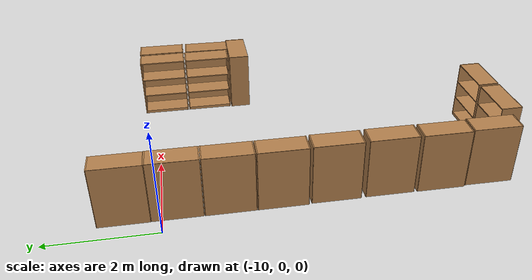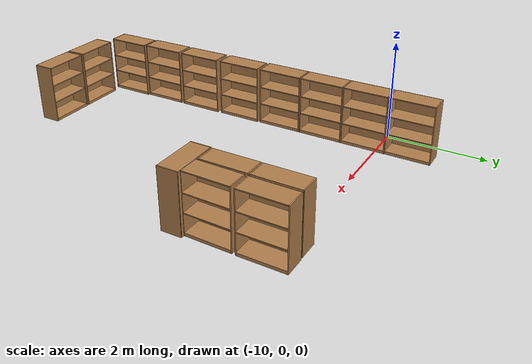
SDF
<sdf version="1.7">
 <world name="default">
  <model name="bookshelf">
   <static>1</static>
   <link name="link">
    <inertial><mass>1</mass></inertial>
    <collision name="back">
     <pose>0 0.005 0.6 0 -0 0</pose>
     <geometry><box><size>0.9 0.01 1.2</size></box></geometry>
    </collision>
    <visual name="visual1">
     <pose>0 0.005 0.6 0 -0 0</pose>
     <geometry><box><size>0.9 0.01 1.2</size></box></geometry>
     <material>
      <script><uri>file://media/materials/scripts/gazebo.material</uri><name>Gazebo/Wood</name></script>
     </material>
    </visual>
    <collision name="left_side">
     <pose>0.45 -0.195 0.6 0 -0 0</pose>
     <geometry><box><size>0.02 0.4 1.2</size></box></geometry>
    </collision>
    <visual name="visual2">
     <pose>0.45 -0.195 0.6 0 -0 0</pose>
     <geometry><box><size>0.02 0.4 1.2</size></box></geometry>
     <material>
      <script><uri>file://media/materials/scripts/gazebo.material</uri><name>Gazebo/Wood</name></script>
     </material>
    </visual>
    <collision name="right_side">
     <pose>-0.45 -0.195 0.6 0 -0 0</pose>
     <geometry><box><size>0.02 0.4 1.2</size></box></geometry>
    </collision>
    <visual name="visual3">
     <pose>-0.45 -0.195 0.6 0 -0 0</pose>
     <geometry><box><size>0.02 0.4 1.2</size></box></geometry>
     <material>
      <script><uri>file://media/materials/scripts/gazebo.material</uri><name>Gazebo/Wood</name></script>
     </material>
    </visual>
    <collision name="bottom">
     <pose>0 -0.195 0.03 0 -0 0</pose>
     <geometry><box><size>0.88 0.4 0.06</size></box></geometry>
    </collision>
    <visual name="visual4">
     <pose>0 -0.195 0.03 0 -0 0</pose>
     <geometry><box><size>0.88 0.4 0.06</size></box></geometry>
     <material>
      <script><uri>file://media/materials/scripts/gazebo.material</uri><name>Gazebo/Wood</name></script>
     </material>
    </visual>
    <collision name="top">
     <pose>0 -0.195 1.19 0 -0 0</pose>
     <geometry><box><size>0.88 0.4 0.02</size></box></geometry>
    </collision>
    <visual name="visual5">
     <pose>0 -0.195 1.19 0 -0 0</pose>
     <geometry><box><size>0.88 0.4 0.02</size></box></geometry>
     <material>
      <script><uri>file://media/materials/scripts/gazebo.material</uri><name>Gazebo/Wood</name></script>
     </material>
    </visual>
    <collision name="low_shelf">
     <pose>0 -0.195 0.43 0 -0 0</pose>
     <geometry><box><size>0.88 0.4 0.02</size></box></geometry>
    </collision>
    <visual name="visual6">
     <pose>0 -0.195 0.43 0 -0 0</pose>
     <geometry><box><size>0.88 0.4 0.02</size></box></geometry>
     <material>
      <script><uri>file://media/materials/scripts/gazebo.material</uri><name>Gazebo/Wood</name></script>
     </material>
    </visual>
    <collision name="high_shelf">
     <pose>0 -0.195 0.8 0 -0 0</pose>
     <geometry><box><size>0.88 0.4 0.02</size></box></geometry>
    </collision>
    <visual name="visual7">
     <pose>0 -0.195 0.8 0 -0 0</pose>
     <geometry><box><size>0.88 0.4 0.02</size></box></geometry>
     <material>
      <script><uri>file://media/materials/scripts/gazebo.material</uri><name>Gazebo/Wood</name></script>
     </material>
    </visual>
   </link>
   <pose>-5.54772 -1.59367 0 0 -0 0</pose>
  </model>
  <model name="bookshelf_clone_0">
   <static>1</static>
   <link name="link">
    <inertial><mass>1</mass></inertial>
    <collision name="back">
     <pose>0 0.005 0.6 0 -0 0</pose>
     <geometry><box><size>0.9 0.01 1.2</size></box></geometry>
    </collision>
    <visual name="visual1">
     <pose>0 0.005 0.6 0 -0 0</pose>
     <geometry><box><size>0.9 0.01 1.2</size></box></geometry>
     <material>
      <script><uri>file://media/materials/scripts/gazebo.material</uri><name>Gazebo/Wood</name></script>
     </material>
    </visual>
    <collision name="left_side">
     <pose>0.45 -0.195 0.6 0 -0 0</pose>
     <geometry><box><size>0.02 0.4 1.2</size></box></geometry>
    </collision>
    <visual name="visual2">
     <pose>0.45 -0.195 0.6 0 -0 0</pose>
     <geometry><box><size>0.02 0.4 1.2</size></box></geometry>
     <material>
      <script><uri>file://media/materials/scripts/gazebo.material</uri><name>Gazebo/Wood</name></script>
     </material>
    </visual>
    <collision name="right_side">
     <pose>-0.45 -0.195 0.6 0 -0 0</pose>
     <geometry><box><size>0.02 0.4 1.2</size></box></geometry>
    </collision>
    <visual name="visual3">
     <pose>-0.45 -0.195 0.6 0 -0 0</pose>
     <geometry><box><size>0.02 0.4 1.2</size></box></geometry>
     <material>
      <script><uri>file://media/materials/scripts/gazebo.material</uri><name>Gazebo/Wood</name></script>
     </material>
    </visual>
    <collision name="bottom">
     <pose>0 -0.195 0.03 0 -0 0</pose>
     <geometry><box><size>0.88 0.4 0.06</size></box></geometry>
    </collision>
    <visual name="visual4">
     <pose>0 -0.195 0.03 0 -0 0</pose>
     <geometry><box><size>0.88 0.4 0.06</size></box></geometry>
     <material>
      <script><uri>file://media/materials/scripts/gazebo.material</uri><name>Gazebo/Wood</name></script>
     </material>
    </visual>
    <collision name="top">
     <pose>0 -0.195 1.19 0 -0 0</pose>
     <geometry><box><size>0.88 0.4 0.02</size></box></geometry>
    </collision>
    <visual name="visual5">
     <pose>0 -0.195 1.19 0 -0 0</pose>
     <geometry><box><size>0.88 0.4 0.02</size></box></geometry>
     <material>
      <script><uri>file://media/materials/scripts/gazebo.material</uri><name>Gazebo/Wood</name></script>
     </material>
    </visual>
    <collision name="low_shelf">
     <pose>0 -0.195 0.43 0 -0 0</pose>
     <geometry><box><size>0.88 0.4 0.02</size></box></geometry>
    </collision>
    <visual name="visual6">
     <pose>0 -0.195 0.43 0 -0 0</pose>
     <geometry><box><size>0.88 0.4 0.02</size></box></geometry>
     <material>
      <script><uri>file://media/materials/scripts/gazebo.material</uri><name>Gazebo/Wood</name></script>
     </material>
    </visual>
    <collision name="high_shelf">
     <pose>0 -0.195 0.8 0 -0 0</pose>
     <geometry><box><size>0.88 0.4 0.02</size></box></geometry>
    </collision>
    <visual name="visual7">
     <pose>0 -0.195 0.8 0 -0 0</pose>
     <geometry><box><size>0.88 0.4 0.02</size></box></geometry>
     <material>
      <script><uri>file://media/materials/scripts/gazebo.material</uri><name>Gazebo/Wood</name></script>
     </material>
    </visual>
   </link>
   <pose>-9.67669 0.644456 0 0 -0 1.56663</pose>
  </model>
  <model name="bookshelf_clone_0_clone">
   <static>1</static>
   <link name="link">
    <inertial><mass>1</mass></inertial>
    <collision name="back">
     <pose>0 0.005 0.6 0 -0 0</pose>
     <geometry><box><size>0.9 0.01 1.2</size></box></geometry>
    </collision>
    <visual name="visual1">
     <pose>0 0.005 0.6 0 -0 0</pose>
     <geometry><box><size>0.9 0.01 1.2</size></box></geometry>
     <material>
      <script><uri>file://media/materials/scripts/gazebo.material</uri><name>Gazebo/Wood</name></script>
     </material>
    </visual>
    <collision name="left_side">
     <pose>0.45 -0.195 0.6 0 -0 0</pose>
     <geometry><box><size>0.02 0.4 1.2</size></box></geometry>
    </collision>
    <visual name="visual2">
     <pose>0.45 -0.195 0.6 0 -0 0</pose>
     <geometry><box><size>0.02 0.4 1.2</size></box></geometry>
     <material>
      <script><uri>file://media/materials/scripts/gazebo.material</uri><name>Gazebo/Wood</name></script>
     </material>
    </visual>
    <collision name="right_side">
     <pose>-0.45 -0.195 0.6 0 -0 0</pose>
     <geometry><box><size>0.02 0.4 1.2</size></box></geometry>
    </collision>
    <visual name="visual3">
     <pose>-0.45 -0.195 0.6 0 -0 0</pose>
     <geometry><box><size>0.02 0.4 1.2</size></box></geometry>
     <material>
      <script><uri>file://media/materials/scripts/gazebo.material</uri><name>Gazebo/Wood</name></script>
     </material>
    </visual>
    <collision name="bottom">
     <pose>0 -0.195 0.03 0 -0 0</pose>
     <geometry><box><size>0.88 0.4 0.06</size></box></geometry>
    </collision>
    <visual name="visual4">
     <pose>0 -0.195 0.03 0 -0 0</pose>
     <geometry><box><size>0.88 0.4 0.06</size></box></geometry>
     <material>
      <script><uri>file://media/materials/scripts/gazebo.material</uri><name>Gazebo/Wood</name></script>
     </material>
    </visual>
    <collision name="top">
     <pose>0 -0.195 1.19 0 -0 0</pose>
     <geometry><box><size>0.88 0.4 0.02</size></box></geometry>
    </collision>
    <visual name="visual5">
     <pose>0 -0.195 1.19 0 -0 0</pose>
     <geometry><box><size>0.88 0.4 0.02</size></box></geometry>
     <material>
      <script><uri>file://media/materials/scripts/gazebo.material</uri><name>Gazebo/Wood</name></script>
     </material>
    </visual>
    <collision name="low_shelf">
     <pose>0 -0.195 0.43 0 -0 0</pose>
     <geometry><box><size>0.88 0.4 0.02</size></box></geometry>
    </collision>
    <visual name="visual6">
     <pose>0 -0.195 0.43 0 -0 0</pose>
     <geometry><box><size>0.88 0.4 0.02</size></box></geometry>
     <material>
      <script><uri>file://media/materials/scripts/gazebo.material</uri><name>Gazebo/Wood</name></script>
     </material>
    </visual>
    <collision name="high_shelf">
     <pose>0 -0.195 0.8 0 -0 0</pose>
     <geometry><box><size>0.88 0.4 0.02</size></box></geometry>
    </collision>
    <visual name="visual7">
     <pose>0 -0.195 0.8 0 -0 0</pose>
     <geometry><box><size>0.88 0.4 0.02</size></box></geometry>
     <material>
      <script><uri>file://media/materials/scripts/gazebo.material</uri><name>Gazebo/Wood</name></script>
     </material>
    </visual>
   </link>
   <pose>-9.67578 -0.269706 0 0 -0 1.56663</pose>
  </model>
  <model name="bookshelf_clone_0_clone_0">
   <static>1</static>
   <link name="link">
    <inertial><mass>1</mass></inertial>
    <collision name="back">
     <pose>0 0.005 0.6 0 -0 0</pose>
     <geometry><box><size>0.9 0.01 1.2</size></box></geometry>
    </collision>
    <visual name="visual1">
     <pose>0 0.005 0.6 0 -0 0</pose>
     <geometry><box><size>0.9 0.01 1.2</size></box></geometry>
     <material>
      <script><uri>file://media/materials/scripts/gazebo.material</uri><name>Gazebo/Wood</name></script>
     </material>
    </visual>
    <collision name="left_side">
     <pose>0.45 -0.195 0.6 0 -0 0</pose>
     <geometry><box><size>0.02 0.4 1.2</size></box></geometry>
    </collision>
    <visual name="visual2">
     <pose>0.45 -0.195 0.6 0 -0 0</pose>
     <geometry><box><size>0.02 0.4 1.2</size></box></geometry>
     <material>
      <script><uri>file://media/materials/scripts/gazebo.material</uri><name>Gazebo/Wood</name></script>
     </material>
    </visual>
    <collision name="right_side">
     <pose>-0.45 -0.195 0.6 0 -0 0</pose>
     <geometry><box><size>0.02 0.4 1.2</size></box></geometry>
    </collision>
    <visual name="visual3">
     <pose>-0.45 -0.195 0.6 0 -0 0</pose>
     <geometry><box><size>0.02 0.4 1.2</size></box></geometry>
     <material>
      <script><uri>file://media/materials/scripts/gazebo.material</uri><name>Gazebo/Wood</name></script>
     </material>
    </visual>
    <collision name="bottom">
     <pose>0 -0.195 0.03 0 -0 0</pose>
     <geometry><box><size>0.88 0.4 0.06</size></box></geometry>
    </collision>
    <visual name="visual4">
     <pose>0 -0.195 0.03 0 -0 0</pose>
     <geometry><box><size>0.88 0.4 0.06</size></box></geometry>
     <material>
      <script><uri>file://media/materials/scripts/gazebo.material</uri><name>Gazebo/Wood</name></script>
     </material>
    </visual>
    <collision name="top">
     <pose>0 -0.195 1.19 0 -0 0</pose>
     <geometry><box><size>0.88 0.4 0.02</size></box></geometry>
    </collision>
    <visual name="visual5">
     <pose>0 -0.195 1.19 0 -0 0</pose>
     <geometry><box><size>0.88 0.4 0.02</size></box></geometry>
     <material>
      <script><uri>file://media/materials/scripts/gazebo.material</uri><name>Gazebo/Wood</name></script>
     </material>
    </visual>
    <collision name="low_shelf">
     <pose>0 -0.195 0.43 0 -0 0</pose>
     <geometry><box><size>0.88 0.4 0.02</size></box></geometry>
    </collision>
    <visual name="visual6">
     <pose>0 -0.195 0.43 0 -0 0</pose>
     <geometry><box><size>0.88 0.4 0.02</size></box></geometry>
     <material>
      <script><uri>file://media/materials/scripts/gazebo.material</uri><name>Gazebo/Wood</name></script>
     </material>
    </visual>
    <collision name="high_shelf">
     <pose>0 -0.195 0.8 0 -0 0</pose>
     <geometry><box><size>0.88 0.4 0.02</size></box></geometry>
    </collision>
    <visual name="visual7">
     <pose>0 -0.195 0.8 0 -0 0</pose>
     <geometry><box><size>0.88 0.4 0.02</size></box></geometry>
     <material>
      <script><uri>file://media/materials/scripts/gazebo.material</uri><name>Gazebo/Wood</name></script>
     </material>
    </visual>
   </link>
   <pose>-9.68117 -1.19587 0 0 -0 1.56663</pose>
  </model>
  <model name="bookshelf_clone_0_clone_0_clone">
   <static>1</static>
   <link name="link">
    <inertial><mass>1</mass></inertial>
    <collision name="back">
     <pose>0 0.005 0.6 0 -0 0</pose>
     <geometry><box><size>0.9 0.01 1.2</size></box></geometry>
    </collision>
    <visual name="visual1">
     <pose>0 0.005 0.6 0 -0 0</pose>
     <geometry><box><size>0.9 0.01 1.2</size></box></geometry>
     <material>
      <script><uri>file://media/materials/scripts/gazebo.material</uri><name>Gazebo/Wood</name></script>
     </material>
    </visual>
    <collision name="left_side">
     <pose>0.45 -0.195 0.6 0 -0 0</pose>
     <geometry><box><size>0.02 0.4 1.2</size></box></geometry>
    </collision>
    <visual name="visual2">
     <pose>0.45 -0.195 0.6 0 -0 0</pose>
     <geometry><box><size>0.02 0.4 1.2</size></box></geometry>
     <material>
      <script><uri>file://media/materials/scripts/gazebo.material</uri><name>Gazebo/Wood</name></script>
     </material>
    </visual>
    <collision name="right_side">
     <pose>-0.45 -0.195 0.6 0 -0 0</pose>
     <geometry><box><size>0.02 0.4 1.2</size></box></geometry>
    </collision>
    <visual name="visual3">
     <pose>-0.45 -0.195 0.6 0 -0 0</pose>
     <geometry><box><size>0.02 0.4 1.2</size></box></geometry>
     <material>
      <script><uri>file://media/materials/scripts/gazebo.material</uri><name>Gazebo/Wood</name></script>
     </material>
    </visual>
    <collision name="bottom">
     <pose>0 -0.195 0.03 0 -0 0</pose>
     <geometry><box><size>0.88 0.4 0.06</size></box></geometry>
    </collision>
    <visual name="visual4">
     <pose>0 -0.195 0.03 0 -0 0</pose>
     <geometry><box><size>0.88 0.4 0.06</size></box></geometry>
     <material>
      <script><uri>file://media/materials/scripts/gazebo.material</uri><name>Gazebo/Wood</name></script>
     </material>
    </visual>
    <collision name="top">
     <pose>0 -0.195 1.19 0 -0 0</pose>
     <geometry><box><size>0.88 0.4 0.02</size></box></geometry>
    </collision>
    <visual name="visual5">
     <pose>0 -0.195 1.19 0 -0 0</pose>
     <geometry><box><size>0.88 0.4 0.02</size></box></geometry>
     <material>
      <script><uri>file://media/materials/scripts/gazebo.material</uri><name>Gazebo/Wood</name></script>
     </material>
    </visual>
    <collision name="low_shelf">
     <pose>0 -0.195 0.43 0 -0 0</pose>
     <geometry><box><size>0.88 0.4 0.02</size></box></geometry>
    </collision>
    <visual name="visual6">
     <pose>0 -0.195 0.43 0 -0 0</pose>
     <geometry><box><size>0.88 0.4 0.02</size></box></geometry>
     <material>
      <script><uri>file://media/materials/scripts/gazebo.material</uri><name>Gazebo/Wood</name></script>
     </material>
    </visual>
    <collision name="high_shelf">
     <pose>0 -0.195 0.8 0 -0 0</pose>
     <geometry><box><size>0.88 0.4 0.02</size></box></geometry>
    </collision>
    <visual name="visual7">
     <pose>0 -0.195 0.8 0 -0 0</pose>
     <geometry><box><size>0.88 0.4 0.02</size></box></geometry>
     <material>
      <script><uri>file://media/materials/scripts/gazebo.material</uri><name>Gazebo/Wood</name></script>
     </material>
    </visual>
   </link>
   <pose>-9.68531 -2.12853 0 0 -0 1.56663</pose>
  </model>
  <model name="bookshelf_clone_0_clone_0_clone_clone">
   <static>1</static>
   <link name="link">
    <inertial><mass>1</mass></inertial>
    <collision name="back">
     <pose>0 0.005 0.6 0 -0 0</pose>
     <geometry><box><size>0.9 0.01 1.2</size></box></geometry>
    </collision>
    <visual name="visual1">
     <pose>0 0.005 0.6 0 -0 0</pose>
     <geometry><box><size>0.9 0.01 1.2</size></box></geometry>
     <material>
      <script><uri>file://media/materials/scripts/gazebo.material</uri><name>Gazebo/Wood</name></script>
     </material>
    </visual>
    <collision name="left_side">
     <pose>0.45 -0.195 0.6 0 -0 0</pose>
     <geometry><box><size>0.02 0.4 1.2</size></box></geometry>
    </collision>
    <visual name="visual2">
     <pose>0.45 -0.195 0.6 0 -0 0</pose>
     <geometry><box><size>0.02 0.4 1.2</size></box></geometry>
     <material>
      <script><uri>file://media/materials/scripts/gazebo.material</uri><name>Gazebo/Wood</name></script>
     </material>
    </visual>
    <collision name="right_side">
     <pose>-0.45 -0.195 0.6 0 -0 0</pose>
     <geometry><box><size>0.02 0.4 1.2</size></box></geometry>
    </collision>
    <visual name="visual3">
     <pose>-0.45 -0.195 0.6 0 -0 0</pose>
     <geometry><box><size>0.02 0.4 1.2</size></box></geometry>
     <material>
      <script><uri>file://media/materials/scripts/gazebo.material</uri><name>Gazebo/Wood</name></script>
     </material>
    </visual>
    <collision name="bottom">
     <pose>0 -0.195 0.03 0 -0 0</pose>
     <geometry><box><size>0.88 0.4 0.06</size></box></geometry>
    </collision>
    <visual name="visual4">
     <pose>0 -0.195 0.03 0 -0 0</pose>
     <geometry><box><size>0.88 0.4 0.06</size></box></geometry>
     <material>
      <script><uri>file://media/materials/scripts/gazebo.material</uri><name>Gazebo/Wood</name></script>
     </material>
    </visual>
    <collision name="top">
     <pose>0 -0.195 1.19 0 -0 0</pose>
     <geometry><box><size>0.88 0.4 0.02</size></box></geometry>
    </collision>
    <visual name="visual5">
     <pose>0 -0.195 1.19 0 -0 0</pose>
     <geometry><box><size>0.88 0.4 0.02</size></box></geometry>
     <material>
      <script><uri>file://media/materials/scripts/gazebo.material</uri><name>Gazebo/Wood</name></script>
     </material>
    </visual>
    <collision name="low_shelf">
     <pose>0 -0.195 0.43 0 -0 0</pose>
     <geometry><box><size>0.88 0.4 0.02</size></box></geometry>
    </collision>
    <visual name="visual6">
     <pose>0 -0.195 0.43 0 -0 0</pose>
     <geometry><box><size>0.88 0.4 0.02</size></box></geometry>
     <material>
      <script><uri>file://media/materials/scripts/gazebo.material</uri><name>Gazebo/Wood</name></script>
     </material>
    </visual>
    <collision name="high_shelf">
     <pose>0 -0.195 0.8 0 -0 0</pose>
     <geometry><box><size>0.88 0.4 0.02</size></box></geometry>
    </collision>
    <visual name="visual7">
     <pose>0 -0.195 0.8 0 -0 0</pose>
     <geometry><box><size>0.88 0.4 0.02</size></box></geometry>
     <material>
      <script><uri>file://media/materials/scripts/gazebo.material</uri><name>Gazebo/Wood</name></script>
     </material>
    </visual>
   </link>
   <pose>-9.67154 -3.09417 0 0 -0 1.56663</pose>
  </model>
  <model name="bookshelf_clone_0_clone_0_clone_clone_0">
   <static>1</static>
   <link name="link">
    <inertial><mass>1</mass></inertial>
    <collision name="back">
     <pose>0 0.005 0.6 0 -0 0</pose>
     <geometry><box><size>0.9 0.01 1.2</size></box></geometry>
    </collision>
    <visual name="visual1">
     <pose>0 0.005 0.6 0 -0 0</pose>
     <geometry><box><size>0.9 0.01 1.2</size></box></geometry>
     <material>
      <script><uri>file://media/materials/scripts/gazebo.material</uri><name>Gazebo/Wood</name></script>
     </material>
    </visual>
    <collision name="left_side">
     <pose>0.45 -0.195 0.6 0 -0 0</pose>
     <geometry><box><size>0.02 0.4 1.2</size></box></geometry>
    </collision>
    <visual name="visual2">
     <pose>0.45 -0.195 0.6 0 -0 0</pose>
     <geometry><box><size>0.02 0.4 1.2</size></box></geometry>
     <material>
      <script><uri>file://media/materials/scripts/gazebo.material</uri><name>Gazebo/Wood</name></script>
     </material>
    </visual>
    <collision name="right_side">
     <pose>-0.45 -0.195 0.6 0 -0 0</pose>
     <geometry><box><size>0.02 0.4 1.2</size></box></geometry>
    </collision>
    <visual name="visual3">
     <pose>-0.45 -0.195 0.6 0 -0 0</pose>
     <geometry><box><size>0.02 0.4 1.2</size></box></geometry>
     <material>
      <script><uri>file://media/materials/scripts/gazebo.material</uri><name>Gazebo/Wood</name></script>
     </material>
    </visual>
    <collision name="bottom">
     <pose>0 -0.195 0.03 0 -0 0</pose>
     <geometry><box><size>0.88 0.4 0.06</size></box></geometry>
    </collision>
    <visual name="visual4">
     <pose>0 -0.195 0.03 0 -0 0</pose>
     <geometry><box><size>0.88 0.4 0.06</size></box></geometry>
     <material>
      <script><uri>file://media/materials/scripts/gazebo.material</uri><name>Gazebo/Wood</name></script>
     </material>
    </visual>
    <collision name="top">
     <pose>0 -0.195 1.19 0 -0 0</pose>
     <geometry><box><size>0.88 0.4 0.02</size></box></geometry>
    </collision>
    <visual name="visual5">
     <pose>0 -0.195 1.19 0 -0 0</pose>
     <geometry><box><size>0.88 0.4 0.02</size></box></geometry>
     <material>
      <script><uri>file://media/materials/scripts/gazebo.material</uri><name>Gazebo/Wood</name></script>
     </material>
    </visual>
    <collision name="low_shelf">
     <pose>0 -0.195 0.43 0 -0 0</pose>
     <geometry><box><size>0.88 0.4 0.02</size></box></geometry>
    </collision>
    <visual name="visual6">
     <pose>0 -0.195 0.43 0 -0 0</pose>
     <geometry><box><size>0.88 0.4 0.02</size></box></geometry>
     <material>
      <script><uri>file://media/materials/scripts/gazebo.material</uri><name>Gazebo/Wood</name></script>
     </material>
    </visual>
    <collision name="high_shelf">
     <pose>0 -0.195 0.8 0 -0 0</pose>
     <geometry><box><size>0.88 0.4 0.02</size></box></geometry>
    </collision>
    <visual name="visual7">
     <pose>0 -0.195 0.8 0 -0 0</pose>
     <geometry><box><size>0.88 0.4 0.02</size></box></geometry>
     <material>
      <script><uri>file://media/materials/scripts/gazebo.material</uri><name>Gazebo/Wood</name></script>
     </material>
    </visual>
   </link>
   <pose>-9.66259 -4.09234 0 0 -0 1.56663</pose>
  </model>
  <model name="bookshelf_clone_0_clone_0_clone_clone_1">
   <static>1</static>
   <link name="link">
    <inertial><mass>1</mass></inertial>
    <collision name="back">
     <pose>0 0.005 0.6 0 -0 0</pose>
     <geometry><box><size>0.9 0.01 1.2</size></box></geometry>
    </collision>
    <visual name="visual1">
     <pose>0 0.005 0.6 0 -0 0</pose>
     <geometry><box><size>0.9 0.01 1.2</size></box></geometry>
     <material>
      <script><uri>file://media/materials/scripts/gazebo.material</uri><name>Gazebo/Wood</name></script>
     </material>
    </visual>
    <collision name="left_side">
     <pose>0.45 -0.195 0.6 0 -0 0</pose>
     <geometry><box><size>0.02 0.4 1.2</size></box></geometry>
    </collision>
    <visual name="visual2">
     <pose>0.45 -0.195 0.6 0 -0 0</pose>
     <geometry><box><size>0.02 0.4 1.2</size></box></geometry>
     <material>
      <script><uri>file://media/materials/scripts/gazebo.material</uri><name>Gazebo/Wood</name></script>
     </material>
    </visual>
    <collision name="right_side">
     <pose>-0.45 -0.195 0.6 0 -0 0</pose>
     <geometry><box><size>0.02 0.4 1.2</size></box></geometry>
    </collision>
    <visual name="visual3">
     <pose>-0.45 -0.195 0.6 0 -0 0</pose>
     <geometry><box><size>0.02 0.4 1.2</size></box></geometry>
     <material>
      <script><uri>file://media/materials/scripts/gazebo.material</uri><name>Gazebo/Wood</name></script>
     </material>
    </visual>
    <collision name="bottom">
     <pose>0 -0.195 0.03 0 -0 0</pose>
     <geometry><box><size>0.88 0.4 0.06</size></box></geometry>
    </collision>
    <visual name="visual4">
     <pose>0 -0.195 0.03 0 -0 0</pose>
     <geometry><box><size>0.88 0.4 0.06</size></box></geometry>
     <material>
      <script><uri>file://media/materials/scripts/gazebo.material</uri><name>Gazebo/Wood</name></script>
     </material>
    </visual>
    <collision name="top">
     <pose>0 -0.195 1.19 0 -0 0</pose>
     <geometry><box><size>0.88 0.4 0.02</size></box></geometry>
    </collision>
    <visual name="visual5">
     <pose>0 -0.195 1.19 0 -0 0</pose>
     <geometry><box><size>0.88 0.4 0.02</size></box></geometry>
     <material>
      <script><uri>file://media/materials/scripts/gazebo.material</uri><name>Gazebo/Wood</name></script>
     </material>
    </visual>
    <collision name="low_shelf">
     <pose>0 -0.195 0.43 0 -0 0</pose>
     <geometry><box><size>0.88 0.4 0.02</size></box></geometry>
    </collision>
    <visual name="visual6">
     <pose>0 -0.195 0.43 0 -0 0</pose>
     <geometry><box><size>0.88 0.4 0.02</size></box></geometry>
     <material>
      <script><uri>file://media/materials/scripts/gazebo.material</uri><name>Gazebo/Wood</name></script>
     </material>
    </visual>
    <collision name="high_shelf">
     <pose>0 -0.195 0.8 0 -0 0</pose>
     <geometry><box><size>0.88 0.4 0.02</size></box></geometry>
    </collision>
    <visual name="visual7">
     <pose>0 -0.195 0.8 0 -0 0</pose>
     <geometry><box><size>0.88 0.4 0.02</size></box></geometry>
     <material>
      <script><uri>file://media/materials/scripts/gazebo.material</uri><name>Gazebo/Wood</name></script>
     </material>
    </visual>
   </link>
   <pose>-9.67127 -5.06479 0 0 -0 1.56663</pose>
  </model>
  <model name="bookshelf_clone_0_clone_0_clone_clone_2">
   <static>1</static>
   <link name="link">
    <inertial><mass>1</mass></inertial>
    <collision name="back">
     <pose>0 0.005 0.6 0 -0 0</pose>
     <geometry><box><size>0.9 0.01 1.2</size></box></geometry>
    </collision>
    <visual name="visual1">
     <pose>0 0.005 0.6 0 -0 0</pose>
     <geometry><box><size>0.9 0.01 1.2</size></box></geometry>
     <material>
      <script><uri>file://media/materials/scripts/gazebo.material</uri><name>Gazebo/Wood</name></script>
     </material>
    </visual>
    <collision name="left_side">
     <pose>0.45 -0.195 0.6 0 -0 0</pose>
     <geometry><box><size>0.02 0.4 1.2</size></box></geometry>
    </collision>
    <visual name="visual2">
     <pose>0.45 -0.195 0.6 0 -0 0</pose>
     <geometry><box><size>0.02 0.4 1.2</size></box></geometry>
     <material>
      <script><uri>file://media/materials/scripts/gazebo.material</uri><name>Gazebo/Wood</name></script>
     </material>
    </visual>
    <collision name="right_side">
     <pose>-0.45 -0.195 0.6 0 -0 0</pose>
     <geometry><box><size>0.02 0.4 1.2</size></box></geometry>
    </collision>
    <visual name="visual3">
     <pose>-0.45 -0.195 0.6 0 -0 0</pose>
     <geometry><box><size>0.02 0.4 1.2</size></box></geometry>
     <material>
      <script><uri>file://media/materials/scripts/gazebo.material</uri><name>Gazebo/Wood</name></script>
     </material>
    </visual>
    <collision name="bottom">
     <pose>0 -0.195 0.03 0 -0 0</pose>
     <geometry><box><size>0.88 0.4 0.06</size></box></geometry>
    </collision>
    <visual name="visual4">
     <pose>0 -0.195 0.03 0 -0 0</pose>
     <geometry><box><size>0.88 0.4 0.06</size></box></geometry>
     <material>
      <script><uri>file://media/materials/scripts/gazebo.material</uri><name>Gazebo/Wood</name></script>
     </material>
    </visual>
    <collision name="top">
     <pose>0 -0.195 1.19 0 -0 0</pose>
     <geometry><box><size>0.88 0.4 0.02</size></box></geometry>
    </collision>
    <visual name="visual5">
     <pose>0 -0.195 1.19 0 -0 0</pose>
     <geometry><box><size>0.88 0.4 0.02</size></box></geometry>
     <material>
      <script><uri>file://media/materials/scripts/gazebo.material</uri><name>Gazebo/Wood</name></script>
     </material>
    </visual>
    <collision name="low_shelf">
     <pose>0 -0.195 0.43 0 -0 0</pose>
     <geometry><box><size>0.88 0.4 0.02</size></box></geometry>
    </collision>
    <visual name="visual6">
     <pose>0 -0.195 0.43 0 -0 0</pose>
     <geometry><box><size>0.88 0.4 0.02</size></box></geometry>
     <material>
      <script><uri>file://media/materials/scripts/gazebo.material</uri><name>Gazebo/Wood</name></script>
     </material>
    </visual>
    <collision name="high_shelf">
     <pose>0 -0.195 0.8 0 -0 0</pose>
     <geometry><box><size>0.88 0.4 0.02</size></box></geometry>
    </collision>
    <visual name="visual7">
     <pose>0 -0.195 0.8 0 -0 0</pose>
     <geometry><box><size>0.88 0.4 0.02</size></box></geometry>
     <material>
      <script><uri>file://media/materials/scripts/gazebo.material</uri><name>Gazebo/Wood</name></script>
     </material>
    </visual>
   </link>
   <pose>-9.64416 -6.00315 0 0 -0 1.56663</pose>
  </model>
  <model name="bookshelf_clone_1">
   <static>1</static>
   <link name="link">
    <inertial><mass>1</mass></inertial>
    <collision name="back">
     <pose>0 0.005 0.6 0 -0 0</pose>
     <geometry><box><size>0.9 0.01 1.2</size></box></geometry>
    </collision>
    <visual name="visual1">
     <pose>0 0.005 0.6 0 -0 0</pose>
     <geometry><box><size>0.9 0.01 1.2</size></box></geometry>
     <material>
      <script><uri>file://media/materials/scripts/gazebo.material</uri><name>Gazebo/Wood</name></script>
     </material>
    </visual>
    <collision name="left_side">
     <pose>0.45 -0.195 0.6 0 -0 0</pose>
     <geometry><box><size>0.02 0.4 1.2</size></box></geometry>
    </collision>
    <visual name="visual2">
     <pose>0.45 -0.195 0.6 0 -0 0</pose>
     <geometry><box><size>0.02 0.4 1.2</size></box></geometry>
     <material>
      <script><uri>file://media/materials/scripts/gazebo.material</uri><name>Gazebo/Wood</name></script>
     </material>
    </visual>
    <collision name="right_side">
     <pose>-0.45 -0.195 0.6 0 -0 0</pose>
     <geometry><box><size>0.02 0.4 1.2</size></box></geometry>
    </collision>
    <visual name="visual3">
     <pose>-0.45 -0.195 0.6 0 -0 0</pose>
     <geometry><box><size>0.02 0.4 1.2</size></box></geometry>
     <material>
      <script><uri>file://media/materials/scripts/gazebo.material</uri><name>Gazebo/Wood</name></script>
     </material>
    </visual>
    <collision name="bottom">
     <pose>0 -0.195 0.03 0 -0 0</pose>
     <geometry><box><size>0.88 0.4 0.06</size></box></geometry>
    </collision>
    <visual name="visual4">
     <pose>0 -0.195 0.03 0 -0 0</pose>
     <geometry><box><size>0.88 0.4 0.06</size></box></geometry>
     <material>
      <script><uri>file://media/materials/scripts/gazebo.material</uri><name>Gazebo/Wood</name></script>
     </material>
    </visual>
    <collision name="top">
     <pose>0 -0.195 1.19 0 -0 0</pose>
     <geometry><box><size>0.88 0.4 0.02</size></box></geometry>
    </collision>
    <visual name="visual5">
     <pose>0 -0.195 1.19 0 -0 0</pose>
     <geometry><box><size>0.88 0.4 0.02</size></box></geometry>
     <material>
      <script><uri>file://media/materials/scripts/gazebo.material</uri><name>Gazebo/Wood</name></script>
     </material>
    </visual>
    <collision name="low_shelf">
     <pose>0 -0.195 0.43 0 -0 0</pose>
     <geometry><box><size>0.88 0.4 0.02</size></box></geometry>
    </collision>
    <visual name="visual6">
     <pose>0 -0.195 0.43 0 -0 0</pose>
     <geometry><box><size>0.88 0.4 0.02</size></box></geometry>
     <material>
      <script><uri>file://media/materials/scripts/gazebo.material</uri><name>Gazebo/Wood</name></script>
     </material>
    </visual>
    <collision name="high_shelf">
     <pose>0 -0.195 0.8 0 -0 0</pose>
     <geometry><box><size>0.88 0.4 0.02</size></box></geometry>
    </collision>
    <visual name="visual7">
     <pose>0 -0.195 0.8 0 -0 0</pose>
     <geometry><box><size>0.88 0.4 0.02</size></box></geometry>
     <material>
      <script><uri>file://media/materials/scripts/gazebo.material</uri><name>Gazebo/Wood</name></script>
     </material>
    </visual>
   </link>
   <pose>-8.58966 -6.74973 0 0 0 -3.12822</pose>
  </model>
  <model name="bookshelf_clone_1_clone">
   <static>1</static>
   <link name="link">
    <inertial><mass>1</mass></inertial>
    <collision name="back">
     <pose>0 0.005 0.6 0 -0 0</pose>
     <geometry><box><size>0.9 0.01 1.2</size></box></geometry>
    </collision>
    <visual name="visual1">
     <pose>0 0.005 0.6 0 -0 0</pose>
     <geometry><box><size>0.9 0.01 1.2</size></box></geometry>
     <material>
      <script><uri>file://media/materials/scripts/gazebo.material</uri><name>Gazebo/Wood</name></script>
     </material>
    </visual>
    <collision name="left_side">
     <pose>0.45 -0.195 0.6 0 -0 0</pose>
     <geometry><box><size>0.02 0.4 1.2</size></box></geometry>
    </collision>
    <visual name="visual2">
     <pose>0.45 -0.195 0.6 0 -0 0</pose>
     <geometry><box><size>0.02 0.4 1.2</size></box></geometry>
     <material>
      <script><uri>file://media/materials/scripts/gazebo.material</uri><name>Gazebo/Wood</name></script>
     </material>
    </visual>
    <collision name="right_side">
     <pose>-0.45 -0.195 0.6 0 -0 0</pose>
     <geometry><box><size>0.02 0.4 1.2</size></box></geometry>
    </collision>
    <visual name="visual3">
     <pose>-0.45 -0.195 0.6 0 -0 0</pose>
     <geometry><box><size>0.02 0.4 1.2</size></box></geometry>
     <material>
      <script><uri>file://media/materials/scripts/gazebo.material</uri><name>Gazebo/Wood</name></script>
     </material>
    </visual>
    <collision name="bottom">
     <pose>0 -0.195 0.03 0 -0 0</pose>
     <geometry><box><size>0.88 0.4 0.06</size></box></geometry>
    </collision>
    <visual name="visual4">
     <pose>0 -0.195 0.03 0 -0 0</pose>
     <geometry><box><size>0.88 0.4 0.06</size></box></geometry>
     <material>
      <script><uri>file://media/materials/scripts/gazebo.material</uri><name>Gazebo/Wood</name></script>
     </material>
    </visual>
    <collision name="top">
     <pose>0 -0.195 1.19 0 -0 0</pose>
     <geometry><box><size>0.88 0.4 0.02</size></box></geometry>
    </collision>
    <visual name="visual5">
     <pose>0 -0.195 1.19 0 -0 0</pose>
     <geometry><box><size>0.88 0.4 0.02</size></box></geometry>
     <material>
      <script><uri>file://media/materials/scripts/gazebo.material</uri><name>Gazebo/Wood</name></script>
     </material>
    </visual>
    <collision name="low_shelf">
     <pose>0 -0.195 0.43 0 -0 0</pose>
     <geometry><box><size>0.88 0.4 0.02</size></box></geometry>
    </collision>
    <visual name="visual6">
     <pose>0 -0.195 0.43 0 -0 0</pose>
     <geometry><box><size>0.88 0.4 0.02</size></box></geometry>
     <material>
      <script><uri>file://media/materials/scripts/gazebo.material</uri><name>Gazebo/Wood</name></script>
     </material>
    </visual>
    <collision name="high_shelf">
     <pose>0 -0.195 0.8 0 -0 0</pose>
     <geometry><box><size>0.88 0.4 0.02</size></box></geometry>
    </collision>
    <visual name="visual7">
     <pose>0 -0.195 0.8 0 -0 0</pose>
     <geometry><box><size>0.88 0.4 0.02</size></box></geometry>
     <material>
      <script><uri>file://media/materials/scripts/gazebo.material</uri><name>Gazebo/Wood</name></script>
     </material>
    </visual>
   </link>
   <pose>-7.62937 -6.73399 0 0 0 -3.12822</pose>
  </model>
  <model name="bookshelf_clone_2">
   <static>1</static>
   <link name="link">
    <inertial><mass>1</mass></inertial>
    <collision name="back">
     <pose>0 0.005 0.6 0 -0 0</pose>
     <geometry><box><size>0.9 0.01 1.2</size></box></geometry>
    </collision>
    <visual name="visual1">
     <pose>0 0.005 0.6 0 -0 0</pose>
     <geometry><box><size>0.9 0.01 1.2</size></box></geometry>
     <material>
      <script><uri>file://media/materials/scripts/gazebo.material</uri><name>Gazebo/Wood</name></script>
     </material>
    </visual>
    <collision name="left_side">
     <pose>0.45 -0.195 0.6 0 -0 0</pose>
     <geometry><box><size>0.02 0.4 1.2</size></box></geometry>
    </collision>
    <visual name="visual2">
     <pose>0.45 -0.195 0.6 0 -0 0</pose>
     <geometry><box><size>0.02 0.4 1.2</size></box></geometry>
     <material>
      <script><uri>file://media/materials/scripts/gazebo.material</uri><name>Gazebo/Wood</name></script>
     </material>
    </visual>
    <collision name="right_side">
     <pose>-0.45 -0.195 0.6 0 -0 0</pose>
     <geometry><box><size>0.02 0.4 1.2</size></box></geometry>
    </collision>
    <visual name="visual3">
     <pose>-0.45 -0.195 0.6 0 -0 0</pose>
     <geometry><box><size>0.02 0.4 1.2</size></box></geometry>
     <material>
      <script><uri>file://media/materials/scripts/gazebo.material</uri><name>Gazebo/Wood</name></script>
     </material>
    </visual>
    <collision name="bottom">
     <pose>0 -0.195 0.03 0 -0 0</pose>
     <geometry><box><size>0.88 0.4 0.06</size></box></geometry>
    </collision>
    <visual name="visual4">
     <pose>0 -0.195 0.03 0 -0 0</pose>
     <geometry><box><size>0.88 0.4 0.06</size></box></geometry>
     <material>
      <script><uri>file://media/materials/scripts/gazebo.material</uri><name>Gazebo/Wood</name></script>
     </material>
    </visual>
    <collision name="top">
     <pose>0 -0.195 1.19 0 -0 0</pose>
     <geometry><box><size>0.88 0.4 0.02</size></box></geometry>
    </collision>
    <visual name="visual5">
     <pose>0 -0.195 1.19 0 -0 0</pose>
     <geometry><box><size>0.88 0.4 0.02</size></box></geometry>
     <material>
      <script><uri>file://media/materials/scripts/gazebo.material</uri><name>Gazebo/Wood</name></script>
     </material>
    </visual>
    <collision name="low_shelf">
     <pose>0 -0.195 0.43 0 -0 0</pose>
     <geometry><box><size>0.88 0.4 0.02</size></box></geometry>
    </collision>
    <visual name="visual6">
     <pose>0 -0.195 0.43 0 -0 0</pose>
     <geometry><box><size>0.88 0.4 0.02</size></box></geometry>
     <material>
      <script><uri>file://media/materials/scripts/gazebo.material</uri><name>Gazebo/Wood</name></script>
     </material>
    </visual>
    <collision name="high_shelf">
     <pose>0 -0.195 0.8 0 -0 0</pose>
     <geometry><box><size>0.88 0.4 0.02</size></box></geometry>
    </collision>
    <visual name="visual7">
     <pose>0 -0.195 0.8 0 -0 0</pose>
     <geometry><box><size>0.88 0.4 0.02</size></box></geometry>
     <material>
      <script><uri>file://media/materials/scripts/gazebo.material</uri><name>Gazebo/Wood</name></script>
     </material>
    </visual>
   </link>
   <pose>-5.59333 -1.1021 0 0 0 -1.57136</pose>
  </model>
  <model name="bookshelf_clone_2_clone">
   <static>1</static>
   <link name="link">
    <inertial><mass>1</mass></inertial>
    <collision name="back">
     <pose>0 0.005 0.6 0 -0 0</pose>
     <geometry><box><size>0.9 0.01 1.2</size></box></geometry>
    </collision>
    <visual name="visual1">
     <pose>0 0.005 0.6 0 -0 0</pose>
     <geometry><box><size>0.9 0.01 1.2</size></box></geometry>
     <material>
      <script><uri>file://media/materials/scripts/gazebo.material</uri><name>Gazebo/Wood</name></script>
     </material>
    </visual>
    <collision name="left_side">
     <pose>0.45 -0.195 0.6 0 -0 0</pose>
     <geometry><box><size>0.02 0.4 1.2</size></box></geometry>
    </collision>
    <visual name="visual2">
     <pose>0.45 -0.195 0.6 0 -0 0</pose>
     <geometry><box><size>0.02 0.4 1.2</size></box></geometry>
     <material>
      <script><uri>file://media/materials/scripts/gazebo.material</uri><name>Gazebo/Wood</name></script>
     </material>
    </visual>
    <collision name="right_side">
     <pose>-0.45 -0.195 0.6 0 -0 0</pose>
     <geometry><box><size>0.02 0.4 1.2</size></box></geometry>
    </collision>
    <visual name="visual3">
     <pose>-0.45 -0.195 0.6 0 -0 0</pose>
     <geometry><box><size>0.02 0.4 1.2</size></box></geometry>
     <material>
      <script><uri>file://media/materials/scripts/gazebo.material</uri><name>Gazebo/Wood</name></script>
     </material>
    </visual>
    <collision name="bottom">
     <pose>0 -0.195 0.03 0 -0 0</pose>
     <geometry><box><size>0.88 0.4 0.06</size></box></geometry>
    </collision>
    <visual name="visual4">
     <pose>0 -0.195 0.03 0 -0 0</pose>
     <geometry><box><size>0.88 0.4 0.06</size></box></geometry>
     <material>
      <script><uri>file://media/materials/scripts/gazebo.material</uri><name>Gazebo/Wood</name></script>
     </material>
    </visual>
    <collision name="top">
     <pose>0 -0.195 1.19 0 -0 0</pose>
     <geometry><box><size>0.88 0.4 0.02</size></box></geometry>
    </collision>
    <visual name="visual5">
     <pose>0 -0.195 1.19 0 -0 0</pose>
     <geometry><box><size>0.88 0.4 0.02</size></box></geometry>
     <material>
      <script><uri>file://media/materials/scripts/gazebo.material</uri><name>Gazebo/Wood</name></script>
     </material>
    </visual>
    <collision name="low_shelf">
     <pose>0 -0.195 0.43 0 -0 0</pose>
     <geometry><box><size>0.88 0.4 0.02</size></box></geometry>
    </collision>
    <visual name="visual6">
     <pose>0 -0.195 0.43 0 -0 0</pose>
     <geometry><box><size>0.88 0.4 0.02</size></box></geometry>
     <material>
      <script><uri>file://media/materials/scripts/gazebo.material</uri><name>Gazebo/Wood</name></script>
     </material>
    </visual>
    <collision name="high_shelf">
     <pose>0 -0.195 0.8 0 -0 0</pose>
     <geometry><box><size>0.88 0.4 0.02</size></box></geometry>
    </collision>
    <visual name="visual7">
     <pose>0 -0.195 0.8 0 -0 0</pose>
     <geometry><box><size>0.88 0.4 0.02</size></box></geometry>
     <material>
      <script><uri>file://media/materials/scripts/gazebo.material</uri><name>Gazebo/Wood</name></script>
     </material>
    </visual>
   </link>
   <pose>-5.5449 -1.12844 0 0 -0 1.55122</pose>
  </model>
  <model name="bookshelf_clone_2_clone_0">
   <static>1</static>
   <link name="link">
    <inertial><mass>1</mass></inertial>
    <collision name="back">
     <pose>0 0.005 0.6 0 -0 0</pose>
     <geometry><box><size>0.9 0.01 1.2</size></box></geometry>
    </collision>
    <visual name="visual1">
     <pose>0 0.005 0.6 0 -0 0</pose>
     <geometry><box><size>0.9 0.01 1.2</size></box></geometry>
     <material>
      <script><uri>file://media/materials/scripts/gazebo.material</uri><name>Gazebo/Wood</name></script>
     </material>
    </visual>
    <collision name="left_side">
     <pose>0.45 -0.195 0.6 0 -0 0</pose>
     <geometry><box><size>0.02 0.4 1.2</size></box></geometry>
    </collision>
    <visual name="visual2">
     <pose>0.45 -0.195 0.6 0 -0 0</pose>
     <geometry><box><size>0.02 0.4 1.2</size></box></geometry>
     <material>
      <script><uri>file://media/materials/scripts/gazebo.material</uri><name>Gazebo/Wood</name></script>
     </material>
    </visual>
    <collision name="right_side">
     <pose>-0.45 -0.195 0.6 0 -0 0</pose>
     <geometry><box><size>0.02 0.4 1.2</size></box></geometry>
    </collision>
    <visual name="visual3">
     <pose>-0.45 -0.195 0.6 0 -0 0</pose>
     <geometry><box><size>0.02 0.4 1.2</size></box></geometry>
     <material>
      <script><uri>file://media/materials/scripts/gazebo.material</uri><name>Gazebo/Wood</name></script>
     </material>
    </visual>
    <collision name="bottom">
     <pose>0 -0.195 0.03 0 -0 0</pose>
     <geometry><box><size>0.88 0.4 0.06</size></box></geometry>
    </collision>
    <visual name="visual4">
     <pose>0 -0.195 0.03 0 -0 0</pose>
     <geometry><box><size>0.88 0.4 0.06</size></box></geometry>
     <material>
      <script><uri>file://media/materials/scripts/gazebo.material</uri><name>Gazebo/Wood</name></script>
     </material>
    </visual>
    <collision name="top">
     <pose>0 -0.195 1.19 0 -0 0</pose>
     <geometry><box><size>0.88 0.4 0.02</size></box></geometry>
    </collision>
    <visual name="visual5">
     <pose>0 -0.195 1.19 0 -0 0</pose>
     <geometry><box><size>0.88 0.4 0.02</size></box></geometry>
     <material>
      <script><uri>file://media/materials/scripts/gazebo.material</uri><name>Gazebo/Wood</name></script>
     </material>
    </visual>
    <collision name="low_shelf">
     <pose>0 -0.195 0.43 0 -0 0</pose>
     <geometry><box><size>0.88 0.4 0.02</size></box></geometry>
    </collision>
    <visual name="visual6">
     <pose>0 -0.195 0.43 0 -0 0</pose>
     <geometry><box><size>0.88 0.4 0.02</size></box></geometry>
     <material>
      <script><uri>file://media/materials/scripts/gazebo.material</uri><name>Gazebo/Wood</name></script>
     </material>
    </visual>
    <collision name="high_shelf">
     <pose>0 -0.195 0.8 0 -0 0</pose>
     <geometry><box><size>0.88 0.4 0.02</size></box></geometry>
    </collision>
    <visual name="visual7">
     <pose>0 -0.195 0.8 0 -0 0</pose>
     <geometry><box><size>0.88 0.4 0.02</size></box></geometry>
     <material>
      <script><uri>file://media/materials/scripts/gazebo.material</uri><name>Gazebo/Wood</name></script>
     </material>
    </visual>
   </link>
   <pose>-5.59047 -0.164709 0 0 0 -1.57136</pose>
  </model>
  <model name="bookshelf_clone_2_clone_clone">
   <static>1</static>
   <link name="link">
    <inertial><mass>1</mass></inertial>
    <collision name="back">
     <pose>0 0.005 0.6 0 -0 0</pose>
     <geometry><box><size>0.9 0.01 1.2</size></box></geometry>
    </collision>
    <visual name="visual1">
     <pose>0 0.005 0.6 0 -0 0</pose>
     <geometry><box><size>0.9 0.01 1.2</size></box></geometry>
     <material>
      <script><uri>file://media/materials/scripts/gazebo.material</uri><name>Gazebo/Wood</name></script>
     </material>
    </visual>
    <collision name="left_side">
     <pose>0.45 -0.195 0.6 0 -0 0</pose>
     <geometry><box><size>0.02 0.4 1.2</size></box></geometry>
    </collision>
    <visual name="visual2">
     <pose>0.45 -0.195 0.6 0 -0 0</pose>
     <geometry><box><size>0.02 0.4 1.2</size></box></geometry>
     <material>
      <script><uri>file://media/materials/scripts/gazebo.material</uri><name>Gazebo/Wood</name></script>
     </material>
    </visual>
    <collision name="right_side">
     <pose>-0.45 -0.195 0.6 0 -0 0</pose>
     <geometry><box><size>0.02 0.4 1.2</size></box></geometry>
    </collision>
    <visual name="visual3">
     <pose>-0.45 -0.195 0.6 0 -0 0</pose>
     <geometry><box><size>0.02 0.4 1.2</size></box></geometry>
     <material>
      <script><uri>file://media/materials/scripts/gazebo.material</uri><name>Gazebo/Wood</name></script>
     </material>
    </visual>
    <collision name="bottom">
     <pose>0 -0.195 0.03 0 -0 0</pose>
     <geometry><box><size>0.88 0.4 0.06</size></box></geometry>
    </collision>
    <visual name="visual4">
     <pose>0 -0.195 0.03 0 -0 0</pose>
     <geometry><box><size>0.88 0.4 0.06</size></box></geometry>
     <material>
      <script><uri>file://media/materials/scripts/gazebo.material</uri><name>Gazebo/Wood</name></script>
     </material>
    </visual>
    <collision name="top">
     <pose>0 -0.195 1.19 0 -0 0</pose>
     <geometry><box><size>0.88 0.4 0.02</size></box></geometry>
    </collision>
    <visual name="visual5">
     <pose>0 -0.195 1.19 0 -0 0</pose>
     <geometry><box><size>0.88 0.4 0.02</size></box></geometry>
     <material>
      <script><uri>file://media/materials/scripts/gazebo.material</uri><name>Gazebo/Wood</name></script>
     </material>
    </visual>
    <collision name="low_shelf">
     <pose>0 -0.195 0.43 0 -0 0</pose>
     <geometry><box><size>0.88 0.4 0.02</size></box></geometry>
    </collision>
    <visual name="visual6">
     <pose>0 -0.195 0.43 0 -0 0</pose>
     <geometry><box><size>0.88 0.4 0.02</size></box></geometry>
     <material>
      <script><uri>file://media/materials/scripts/gazebo.material</uri><name>Gazebo/Wood</name></script>
     </material>
    </visual>
    <collision name="high_shelf">
     <pose>0 -0.195 0.8 0 -0 0</pose>
     <geometry><box><size>0.88 0.4 0.02</size></box></geometry>
    </collision>
    <visual name="visual7">
     <pose>0 -0.195 0.8 0 -0 0</pose>
     <geometry><box><size>0.88 0.4 0.02</size></box></geometry>
     <material>
      <script><uri>file://media/materials/scripts/gazebo.material</uri><name>Gazebo/Wood</name></script>
     </material>
    </visual>
   </link>
   <pose>-5.52621 -0.1577 0 0 -0 1.56718</pose>
  </model>
 </world>
</sdf>
